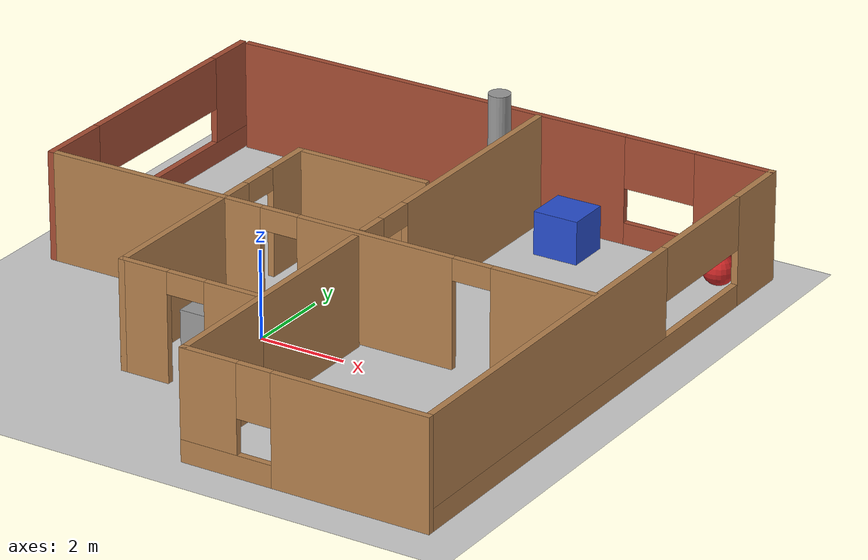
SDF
<sdf version="1.6">
 <world name="default">
  <light name="sun" type="directional">
   <pose>0 0 15 0 -0 0</pose>
   <diffuse>0.8 0.8 0.8 1</diffuse>
   <specular>0.2 0.2 0.2 1</specular>
   <attenuation>
    <range>1000</range>
    <constant>0.9</constant>
    <linear>0.01</linear>
    <quadratic>0.001</quadratic>
   </attenuation>
   <direction>-0.5 0.1 -0.9</direction>
  </light>
  <model name="ground_plane">
   <static>1</static>
   <link name="link">
    <collision name="collision">
     <geometry><plane><normal>0 0 1</normal><size>100 100</size></plane></geometry>
     <surface><friction><ode><mu>100</mu><mu2>50</mu2></ode></friction></surface>
    </collision>
    <visual name="visual">
     <transparency>1</transparency>
     <cast_shadows>0</cast_shadows>
     <geometry><plane><normal>0 0 1</normal><size>100 100</size></plane></geometry>
     <material>
      <script><uri>file://media/materials/scripts/gazebo.material</uri><name>Gazebo/Grey</name></script>
     </material>
    </visual>
   </link>
  </model>
  <gravity>0 0 -9.8</gravity>
  <magnetic_field>6e-06 2.3e-05 -4.2e-05</magnetic_field>
  <atmosphere type="adiabatic"/>
  <physics name="default_physics" default="0" type="ode">
   <max_step_size>0.001</max_step_size>
   <real_time_factor>1</real_time_factor>
   <real_time_update_rate>1000</real_time_update_rate>
  </physics>
  <scene><ambient>0.4 0.4 0.4 1</ambient><background>0.7 0.7 0.7 1</background><shadows>1</shadows></scene>
  <spherical_coordinates>
   <surface_model>EARTH_WGS84</surface_model>
   <latitude_deg>0</latitude_deg>
   <longitude_deg>0</longitude_deg>
   <elevation>0</elevation>
   <heading_deg>0</heading_deg>
  </spherical_coordinates>
  <model name="SlamModel">
   <pose>0.768992 1.34781 0 0 -0 0</pose>
   <link name="Wall_0">
    <pose>0.1 6.736 0 0 -0 0</pose>
    <visual name="Wall_0_Visual_0">
     <pose>-1.78391 0 1.25 0 -0 0</pose>
     <geometry><box><size>9.68217 0.15 2.5</size></box></geometry>
     <material>
      <script><uri>file://media/materials/scripts/gazebo.material</uri><name>Gazebo/Bricks</name></script>
      <ambient>1 1 1 1</ambient>
     </material>
     <meta><layer>0</layer></meta>
    </visual>
    <collision name="Wall_0_Collision_0">
     <geometry><box><size>9.68217 0.15 2.5</size></box></geometry>
     <pose>-1.78391 0 1.25 0 -0 0</pose>
    </collision>
    <visual name="Wall_0_Visual_1">
     <pose>4.84109 0 0.25 0 -0 0</pose>
     <geometry><box><size>3.56783 0.15 0.5</size></box></geometry>
     <material>
      <script><uri>file://media/materials/scripts/gazebo.material</uri><name>Gazebo/Bricks</name></script>
      <ambient>1 1 1 1</ambient>
     </material>
     <meta><layer>0</layer></meta>
    </visual>
    <collision name="Wall_0_Collision_1">
     <geometry><box><size>3.56783 0.15 0.5</size></box></geometry>
     <pose>4.84109 0 0.25 0 -0 0</pose>
    </collision>
    <visual name="Wall_0_Visual_2">
     <pose>5.6861 0 1.5 0 -0 0</pose>
     <geometry><box><size>1.8778 0.15 2</size></box></geometry>
     <material>
      <script><uri>file://media/materials/scripts/gazebo.material</uri><name>Gazebo/Bricks</name></script>
      <ambient>1 1 1 1</ambient>
     </material>
     <meta><layer>0</layer></meta>
    </visual>
    <collision name="Wall_0_Collision_2">
     <geometry><box><size>1.8778 0.15 2</size></box></geometry>
     <pose>5.6861 0 1.5 0 -0 0</pose>
    </collision>
    <visual name="Wall_0_Visual_3">
     <pose>3.90218 0 1.9 0 -0 0</pose>
     <geometry><box><size>1.69002 0.15 1.2</size></box></geometry>
     <material>
      <script><uri>file://media/materials/scripts/gazebo.material</uri><name>Gazebo/Bricks</name></script>
      <ambient>1 1 1 1</ambient>
     </material>
     <meta><layer>0</layer></meta>
    </visual>
    <collision name="Wall_0_Collision_3">
     <geometry><box><size>1.69002 0.15 1.2</size></box></geometry>
     <pose>3.90218 0 1.9 0 -0 0</pose>
    </collision>
   </link>
   <link name="Wall_1">
    <pose>6.65 0 0 0 0 -1.5708</pose>
    <visual name="Wall_1_Visual_0">
     <pose>-6.0201 0 1.25 0 -0 0</pose>
     <geometry><box><size>1.58123 0.15 2.5</size></box></geometry>
     <material>
      <script><uri>file://media/materials/scripts/gazebo.material</uri><name>Gazebo/Wood</name></script>
      <ambient>1 1 1 1</ambient>
     </material>
     <meta><layer>0</layer></meta>
    </visual>
    <collision name="Wall_1_Collision_0">
     <geometry><box><size>1.58123 0.15 2.5</size></box></geometry>
     <pose>-6.0201 0 1.25 0 -0 0</pose>
    </collision>
    <visual name="Wall_1_Visual_1">
     <pose>0.790618 0 0.25 0 -0 0</pose>
     <geometry><box><size>12.0402 0.15 0.5</size></box></geometry>
     <material>
      <script><uri>file://media/materials/scripts/gazebo.material</uri><name>Gazebo/Wood</name></script>
      <ambient>1 1 1 1</ambient>
     </material>
     <meta><layer>0</layer></meta>
    </visual>
    <collision name="Wall_1_Collision_1">
     <geometry><box><size>12.0402 0.15 0.5</size></box></geometry>
     <pose>0.790618 0 0.25 0 -0 0</pose>
    </collision>
    <visual name="Wall_1_Visual_2">
     <pose>2.28312 0 1.5 0 -0 0</pose>
     <geometry><box><size>9.05519 0.15 2</size></box></geometry>
     <material>
      <script><uri>file://media/materials/scripts/gazebo.material</uri><name>Gazebo/Wood</name></script>
      <ambient>1 1 1 1</ambient>
     </material>
     <meta><layer>0</layer></meta>
    </visual>
    <collision name="Wall_1_Collision_2">
     <geometry><box><size>9.05519 0.15 2</size></box></geometry>
     <pose>2.28312 0 1.5 0 -0 0</pose>
    </collision>
    <visual name="Wall_1_Visual_3">
     <pose>-3.73698 0 1.9 0 -0 0</pose>
     <geometry><box><size>2.985 0.15 1.2</size></box></geometry>
     <material>
      <script><uri>file://media/materials/scripts/gazebo.material</uri><name>Gazebo/Wood</name></script>
      <ambient>1 1 1 1</ambient>
     </material>
     <meta><layer>0</layer></meta>
    </visual>
    <collision name="Wall_1_Collision_3">
     <geometry><box><size>2.985 0.15 1.2</size></box></geometry>
     <pose>-3.73698 0 1.9 0 -0 0</pose>
    </collision>
   </link>
   <link name="Wall_11">
    <collision name="Wall_11_Collision">
     <geometry><box><size>3.5 0.15 2.5</size></box></geometry>
     <pose>0 0 1.25 0 -0 0</pose>
    </collision>
    <visual name="Wall_11_Visual">
     <pose>0 0 1.25 0 -0 0</pose>
     <geometry><box><size>3.5 0.15 2.5</size></box></geometry>
     <material>
      <script><uri>file://media/materials/scripts/gazebo.material</uri><name>Gazebo/Wood</name></script>
      <ambient>1 1 1 1</ambient>
     </material>
     <meta><layer>0</layer></meta>
    </visual>
    <pose>1.05 -2.339 0 0 -0 1.5708</pose>
   </link>
   <link name="Wall_13">
    <pose>-2.3 1.011 0 0 -0 1.5708</pose>
    <visual name="Wall_13_Visual_0">
     <pose>-1.05483 0 1.25 0 -0 0</pose>
     <geometry><box><size>0.890336 0.15 2.5</size></box></geometry>
     <material>
      <script><uri>file://media/materials/scripts/gazebo.material</uri><name>Gazebo/Wood</name></script>
      <ambient>1 1 1 1</ambient>
     </material>
     <meta><layer>0</layer></meta>
    </visual>
    <collision name="Wall_13_Collision_0">
     <geometry><box><size>0.890336 0.15 2.5</size></box></geometry>
     <pose>-1.05483 0 1.25 0 -0 0</pose>
    </collision>
    <visual name="Wall_13_Visual_1">
     <pose>0.895168 0 1.25 0 -0 0</pose>
     <geometry><box><size>1.20966 0.15 2.5</size></box></geometry>
     <material>
      <script><uri>file://media/materials/scripts/gazebo.material</uri><name>Gazebo/Wood</name></script>
      <ambient>1 1 1 1</ambient>
     </material>
     <meta><layer>0</layer></meta>
    </visual>
    <collision name="Wall_13_Collision_1">
     <geometry><box><size>1.20966 0.15 2.5</size></box></geometry>
     <pose>0.895168 0 1.25 0 -0 0</pose>
    </collision>
    <visual name="Wall_13_Visual_2">
     <pose>-0.159664 0 2.25 0 -0 0</pose>
     <geometry><box><size>0.9 0.15 0.5</size></box></geometry>
     <material>
      <script><uri>file://media/materials/scripts/gazebo.material</uri><name>Gazebo/Wood</name></script>
      <ambient>1 1 1 1</ambient>
     </material>
     <meta><layer>0</layer></meta>
    </visual>
    <collision name="Wall_13_Collision_2">
     <geometry><box><size>0.9 0.15 0.5</size></box></geometry>
     <pose>-0.159664 0 2.25 0 -0 0</pose>
    </collision>
   </link>
   <link name="Wall_14">
    <collision name="Wall_14_Collision">
     <geometry><box><size>3.25 0.15 2.5</size></box></geometry>
     <pose>0 0 1.25 0 -0 0</pose>
    </collision>
    <visual name="Wall_14_Visual">
     <pose>0 0 1.25 0 -0 0</pose>
     <geometry><box><size>3.25 0.15 2.5</size></box></geometry>
     <material>
      <script><uri>file://media/materials/scripts/gazebo.material</uri><name>Gazebo/Wood</name></script>
      <ambient>1 1 1 1</ambient>
     </material>
     <meta><layer>0</layer></meta>
    </visual>
    <pose>-0.75 2.436 0 0 -0 0</pose>
   </link>
   <link name="Wall_16">
    <pose>1.025 3.191 0 0 0 -1.5708</pose>
    <visual name="Wall_16_Visual_0">
     <pose>-0.805187 0 1.25 0 -0 0</pose>
     <geometry><box><size>5.38963 0.15 2.5</size></box></geometry>
     <material>
      <script><uri>file://media/materials/scripts/gazebo.material</uri><name>Gazebo/Wood</name></script>
      <ambient>1 1 1 1</ambient>
     </material>
     <meta><layer>0</layer></meta>
    </visual>
    <collision name="Wall_16_Collision_0">
     <geometry><box><size>5.38963 0.15 2.5</size></box></geometry>
     <pose>-0.805187 0 1.25 0 -0 0</pose>
    </collision>
    <visual name="Wall_16_Visual_1">
     <pose>3.14481 0 1.25 0 -0 0</pose>
     <geometry><box><size>0.710373 0.15 2.5</size></box></geometry>
     <material>
      <script><uri>file://media/materials/scripts/gazebo.material</uri><name>Gazebo/Wood</name></script>
      <ambient>1 1 1 1</ambient>
     </material>
     <meta><layer>0</layer></meta>
    </visual>
    <collision name="Wall_16_Collision_1">
     <geometry><box><size>0.710373 0.15 2.5</size></box></geometry>
     <pose>3.14481 0 1.25 0 -0 0</pose>
    </collision>
    <visual name="Wall_16_Visual_2">
     <pose>2.33963 0 2.25 0 -0 0</pose>
     <geometry><box><size>0.9 0.15 0.5</size></box></geometry>
     <material>
      <script><uri>file://media/materials/scripts/gazebo.material</uri><name>Gazebo/Wood</name></script>
      <ambient>1 1 1 1</ambient>
     </material>
     <meta><layer>0</layer></meta>
    </visual>
    <collision name="Wall_16_Collision_2">
     <geometry><box><size>0.9 0.15 0.5</size></box></geometry>
     <pose>2.33963 0 2.25 0 -0 0</pose>
    </collision>
   </link>
   <link name="Wall_2">
    <pose>3.85 -6.736 0 0 -0 3.14159</pose>
    <visual name="Wall_2_Visual_0">
     <pose>-1.0663 0 1.25 0 -0 0</pose>
     <geometry><box><size>3.6174 0.15 2.5</size></box></geometry>
     <material>
      <script><uri>file://media/materials/scripts/gazebo.material</uri><name>Gazebo/Wood</name></script>
      <ambient>1 1 1 1</ambient>
     </material>
     <meta><layer>0</layer></meta>
    </visual>
    <collision name="Wall_2_Collision_0">
     <geometry><box><size>3.6174 0.15 2.5</size></box></geometry>
     <pose>-1.0663 0 1.25 0 -0 0</pose>
    </collision>
    <visual name="Wall_2_Visual_1">
     <pose>1.8087 0 0.25 0 -0 0</pose>
     <geometry><box><size>2.1326 0.15 0.5</size></box></geometry>
     <material>
      <script><uri>file://media/materials/scripts/gazebo.material</uri><name>Gazebo/Wood</name></script>
      <ambient>1 1 1 1</ambient>
     </material>
     <meta><layer>0</layer></meta>
    </visual>
    <collision name="Wall_2_Collision_1">
     <geometry><box><size>2.1326 0.15 0.5</size></box></geometry>
     <pose>1.8087 0 0.25 0 -0 0</pose>
    </collision>
    <visual name="Wall_2_Visual_2">
     <pose>2.2087 0 1.5 0 -0 0</pose>
     <geometry><box><size>1.33261 0.15 2</size></box></geometry>
     <material>
      <script><uri>file://media/materials/scripts/gazebo.material</uri><name>Gazebo/Wood</name></script>
      <ambient>1 1 1 1</ambient>
     </material>
     <meta><layer>0</layer></meta>
    </visual>
    <collision name="Wall_2_Collision_2">
     <geometry><box><size>1.33261 0.15 2</size></box></geometry>
     <pose>2.2087 0 1.5 0 -0 0</pose>
    </collision>
    <visual name="Wall_2_Visual_3">
     <pose>1.1424 0 1.9 0 -0 0</pose>
     <geometry><box><size>0.8 0.15 1.2</size></box></geometry>
     <material>
      <script><uri>file://media/materials/scripts/gazebo.material</uri><name>Gazebo/Wood</name></script>
      <ambient>1 1 1 1</ambient>
     </material>
     <meta><layer>0</layer></meta>
    </visual>
    <collision name="Wall_2_Collision_3">
     <geometry><box><size>0.8 0.15 1.2</size></box></geometry>
     <pose>1.1424 0 1.9 0 -0 0</pose>
    </collision>
   </link>
   <link name="Wall_3">
    <collision name="Wall_3_Collision">
     <geometry><box><size>2.87167 0.15 2.5</size></box></geometry>
     <pose>0 0 1.25 0 -0 0</pose>
    </collision>
    <visual name="Wall_3_Visual">
     <pose>0 0 1.25 0 -0 0</pose>
     <geometry><box><size>2.87167 0.15 2.5</size></box></geometry>
     <material>
      <script><uri>file://media/materials/scripts/gazebo.material</uri><name>Gazebo/Wood</name></script>
      <ambient>1 1 1 1</ambient>
     </material>
     <meta><layer>0</layer></meta>
    </visual>
    <pose>1.05 -5.375 0 0 -0 1.5708</pose>
   </link>
   <link name="Wall_4">
    <pose>-0.625 -4.014 0 0 -0 3.14159</pose>
    <visual name="Wall_4_Visual_0">
     <pose>-1.0379 0 1.25 0 -0 0</pose>
     <geometry><box><size>1.4242 0.15 2.5</size></box></geometry>
     <material>
      <script><uri>file://media/materials/scripts/gazebo.material</uri><name>Gazebo/Wood</name></script>
      <ambient>1 1 1 1</ambient>
     </material>
     <meta><layer>0</layer></meta>
    </visual>
    <collision name="Wall_4_Collision_0">
     <geometry><box><size>1.4242 0.15 2.5</size></box></geometry>
     <pose>-1.0379 0 1.25 0 -0 0</pose>
    </collision>
    <visual name="Wall_4_Visual_1">
     <pose>1.1621 0 1.25 0 -0 0</pose>
     <geometry><box><size>1.1758 0.15 2.5</size></box></geometry>
     <material>
      <script><uri>file://media/materials/scripts/gazebo.material</uri><name>Gazebo/Wood</name></script>
      <ambient>1 1 1 1</ambient>
     </material>
     <meta><layer>0</layer></meta>
    </visual>
    <collision name="Wall_4_Collision_1">
     <geometry><box><size>1.1758 0.15 2.5</size></box></geometry>
     <pose>1.1621 0 1.25 0 -0 0</pose>
    </collision>
    <visual name="Wall_4_Visual_2">
     <pose>0.124204 0 2.25 0 -0 0</pose>
     <geometry><box><size>0.9 0.15 0.5</size></box></geometry>
     <material>
      <script><uri>file://media/materials/scripts/gazebo.material</uri><name>Gazebo/Wood</name></script>
      <ambient>1 1 1 1</ambient>
     </material>
     <meta><layer>0</layer></meta>
    </visual>
    <collision name="Wall_4_Collision_2">
     <geometry><box><size>0.9 0.15 0.5</size></box></geometry>
     <pose>0.124204 0 2.25 0 -0 0</pose>
    </collision>
   </link>
   <link name="Wall_5">
    <collision name="Wall_5_Collision">
     <geometry><box><size>3.75 0.15 2.5</size></box></geometry>
     <pose>0 0 1.25 0 -0 0</pose>
    </collision>
    <visual name="Wall_5_Visual">
     <pose>0 0 1.25 0 -0 0</pose>
     <geometry><box><size>3.75 0.15 2.5</size></box></geometry>
     <material>
      <script><uri>file://media/materials/scripts/gazebo.material</uri><name>Gazebo/Wood</name></script>
      <ambient>1 1 1 1</ambient>
     </material>
     <meta><layer>0</layer></meta>
    </visual>
    <pose>-2.3 -2.214 0 0 -0 1.5708</pose>
   </link>
   <link name="Wall_6">
    <collision name="Wall_6_Collision">
     <geometry><box><size>4.5 0.15 2.5</size></box></geometry>
     <pose>0 0 1.25 0 -0 0</pose>
    </collision>
    <visual name="Wall_6_Visual">
     <pose>0 0 1.25 0 -0 0</pose>
     <geometry><box><size>4.5 0.15 2.5</size></box></geometry>
     <material>
      <script><uri>file://media/materials/scripts/gazebo.material</uri><name>Gazebo/Wood</name></script>
      <ambient>0.996078 0.47451 0.0196078 1</ambient>
     </material>
     <meta><layer>0</layer></meta>
    </visual>
    <pose>-4.475 -0.414 0 0 -0 3.14159</pose>
   </link>
   <link name="Wall_7">
    <pose>-6.65 3.136 0 0 -0 1.5708</pose>
    <visual name="Wall_7_Visual_0">
     <pose>-2.79073 0 1.25 0 -0 0</pose>
     <geometry><box><size>1.66854 0.15 2.5</size></box></geometry>
     <material>
      <script><uri>file://media/materials/scripts/gazebo.material</uri><name>Gazebo/Bricks</name></script>
      <ambient>1 1 1 1</ambient>
     </material>
     <meta><layer>0</layer></meta>
    </visual>
    <collision name="Wall_7_Collision_0">
     <geometry><box><size>1.66854 0.15 2.5</size></box></geometry>
     <pose>-2.79073 0 1.25 0 -0 0</pose>
    </collision>
    <visual name="Wall_7_Visual_1">
     <pose>0.834268 0 0.25 0 -0 0</pose>
     <geometry><box><size>5.58146 0.15 0.5</size></box></geometry>
     <material>
      <script><uri>file://media/materials/scripts/gazebo.material</uri><name>Gazebo/Bricks</name></script>
      <ambient>1 1 1 1</ambient>
     </material>
     <meta><layer>0</layer></meta>
    </visual>
    <collision name="Wall_7_Collision_1">
     <geometry><box><size>5.58146 0.15 0.5</size></box></geometry>
     <pose>0.834268 0 0.25 0 -0 0</pose>
    </collision>
    <visual name="Wall_7_Visual_2">
     <pose>3.03454 0 1.5 0 -0 0</pose>
     <geometry><box><size>1.18092 0.15 2</size></box></geometry>
     <material>
      <script><uri>file://media/materials/scripts/gazebo.material</uri><name>Gazebo/Bricks</name></script>
      <ambient>1 1 1 1</ambient>
     </material>
     <meta><layer>0</layer></meta>
    </visual>
    <collision name="Wall_7_Collision_2">
     <geometry><box><size>1.18092 0.15 2</size></box></geometry>
     <pose>3.03454 0 1.5 0 -0 0</pose>
    </collision>
    <visual name="Wall_7_Visual_3">
     <pose>0.243809 0 1.9 0 -0 0</pose>
     <geometry><box><size>4.40055 0.15 1.2</size></box></geometry>
     <material>
      <script><uri>file://media/materials/scripts/gazebo.material</uri><name>Gazebo/Bricks</name></script>
      <ambient>1 1 1 1</ambient>
     </material>
     <meta><layer>0</layer></meta>
    </visual>
    <collision name="Wall_7_Collision_3">
     <geometry><box><size>4.40055 0.15 1.2</size></box></geometry>
     <pose>0.243809 0 1.9 0 -0 0</pose>
    </collision>
   </link>
   <link name="Wall_9">
    <pose>2.125 -0.414 0 0 -0 0</pose>
    <visual name="Wall_9_Visual_0">
     <pose>-3.98858 0 1.25 0 -0 0</pose>
     <geometry><box><size>1.02285 0.15 2.5</size></box></geometry>
     <material>
      <script><uri>file://media/materials/scripts/gazebo.material</uri><name>Gazebo/Wood</name></script>
      <ambient>1 1 1 1</ambient>
     </material>
     <meta><layer>0</layer></meta>
    </visual>
    <collision name="Wall_9_Collision_0">
     <geometry><box><size>1.02285 0.15 2.5</size></box></geometry>
     <pose>-3.98858 0 1.25 0 -0 0</pose>
    </collision>
    <visual name="Wall_9_Visual_1">
     <pose>-0.702298 0 1.25 0 -0 0</pose>
     <geometry><box><size>3.74972 0.15 2.5</size></box></geometry>
     <material>
      <script><uri>file://media/materials/scripts/gazebo.material</uri><name>Gazebo/Wood</name></script>
      <ambient>1 1 1 1</ambient>
     </material>
     <meta><layer>0</layer></meta>
    </visual>
    <collision name="Wall_9_Collision_1">
     <geometry><box><size>3.74972 0.15 2.5</size></box></geometry>
     <pose>-0.702298 0 1.25 0 -0 0</pose>
    </collision>
    <visual name="Wall_9_Visual_2">
     <pose>3.28628 0 1.25 0 -0 0</pose>
     <geometry><box><size>2.42744 0.15 2.5</size></box></geometry>
     <material>
      <script><uri>file://media/materials/scripts/gazebo.material</uri><name>Gazebo/Wood</name></script>
      <ambient>1 1 1 1</ambient>
     </material>
     <meta><layer>0</layer></meta>
    </visual>
    <collision name="Wall_9_Collision_2">
     <geometry><box><size>2.42744 0.15 2.5</size></box></geometry>
     <pose>3.28628 0 1.25 0 -0 0</pose>
    </collision>
    <visual name="Wall_9_Visual_3">
     <pose>-3.02716 0 2.25 0 -0 0</pose>
     <geometry><box><size>0.9 0.15 0.5</size></box></geometry>
     <material>
      <script><uri>file://media/materials/scripts/gazebo.material</uri><name>Gazebo/Wood</name></script>
      <ambient>1 1 1 1</ambient>
     </material>
     <meta><layer>0</layer></meta>
    </visual>
    <collision name="Wall_9_Collision_3">
     <geometry><box><size>0.9 0.15 0.5</size></box></geometry>
     <pose>-3.02716 0 2.25 0 -0 0</pose>
    </collision>
    <visual name="Wall_9_Visual_4">
     <pose>1.62256 0 2.25 0 -0 0</pose>
     <geometry><box><size>0.9 0.15 0.5</size></box></geometry>
     <material>
      <script><uri>file://media/materials/scripts/gazebo.material</uri><name>Gazebo/Wood</name></script>
      <ambient>1 1 1 1</ambient>
     </material>
     <meta><layer>0</layer></meta>
    </visual>
    <collision name="Wall_9_Collision_4">
     <geometry><box><size>0.9 0.15 0.5</size></box></geometry>
     <pose>1.62256 0 2.25 0 -0 0</pose>
    </collision>
   </link>
   <static>1</static>
  </model>
  <model name="bookshelf">
   <static>1</static>
   <link name="link">
    <inertial><mass>1</mass></inertial>
    <collision name="back">
     <pose>0 0.005 0.6 0 -0 0</pose>
     <geometry><box><size>0.9 0.01 1.2</size></box></geometry>
    </collision>
    <visual name="visual1">
     <pose>0 0.005 0.6 0 -0 0</pose>
     <geometry><box><size>0.9 0.01 1.2</size></box></geometry>
     <material>
      <script><uri>file://media/materials/scripts/gazebo.material</uri><name>Gazebo/Wood</name></script>
     </material>
    </visual>
    <collision name="left_side">
     <pose>0.45 -0.195 0.6 0 -0 0</pose>
     <geometry><box><size>0.02 0.4 1.2</size></box></geometry>
    </collision>
    <visual name="visual2">
     <pose>0.45 -0.195 0.6 0 -0 0</pose>
     <geometry><box><size>0.02 0.4 1.2</size></box></geometry>
     <material>
      <script><uri>file://media/materials/scripts/gazebo.material</uri><name>Gazebo/Wood</name></script>
     </material>
    </visual>
    <collision name="right_side">
     <pose>-0.45 -0.195 0.6 0 -0 0</pose>
     <geometry><box><size>0.02 0.4 1.2</size></box></geometry>
    </collision>
    <visual name="visual3">
     <pose>-0.45 -0.195 0.6 0 -0 0</pose>
     <geometry><box><size>0.02 0.4 1.2</size></box></geometry>
     <material>
      <script><uri>file://media/materials/scripts/gazebo.material</uri><name>Gazebo/Wood</name></script>
     </material>
    </visual>
    <collision name="bottom">
     <pose>0 -0.195 0.03 0 -0 0</pose>
     <geometry><box><size>0.88 0.4 0.06</size></box></geometry>
    </collision>
    <visual name="visual4">
     <pose>0 -0.195 0.03 0 -0 0</pose>
     <geometry><box><size>0.88 0.4 0.06</size></box></geometry>
     <material>
      <script><uri>file://media/materials/scripts/gazebo.material</uri><name>Gazebo/Wood</name></script>
     </material>
    </visual>
    <collision name="top">
     <pose>0 -0.195 1.19 0 -0 0</pose>
     <geometry><box><size>0.88 0.4 0.02</size></box></geometry>
    </collision>
    <visual name="visual5">
     <pose>0 -0.195 1.19 0 -0 0</pose>
     <geometry><box><size>0.88 0.4 0.02</size></box></geometry>
     <material>
      <script><uri>file://media/materials/scripts/gazebo.material</uri><name>Gazebo/Wood</name></script>
     </material>
    </visual>
    <collision name="low_shelf">
     <pose>0 -0.195 0.43 0 -0 0</pose>
     <geometry><box><size>0.88 0.4 0.02</size></box></geometry>
    </collision>
    <visual name="visual6">
     <pose>0 -0.195 0.43 0 -0 0</pose>
     <geometry><box><size>0.88 0.4 0.02</size></box></geometry>
     <material>
      <script><uri>file://media/materials/scripts/gazebo.material</uri><name>Gazebo/Wood</name></script>
     </material>
    </visual>
    <collision name="high_shelf">
     <pose>0 -0.195 0.8 0 -0 0</pose>
     <geometry><box><size>0.88 0.4 0.02</size></box></geometry>
    </collision>
    <visual name="visual7">
     <pose>0 -0.195 0.8 0 -0 0</pose>
     <geometry><box><size>0.88 0.4 0.02</size></box></geometry>
     <material>
      <script><uri>file://media/materials/scripts/gazebo.material</uri><name>Gazebo/Wood</name></script>
     </material>
    </visual>
   </link>
   <pose>6.62422 2.13632 0 0 -0 0</pose>
  </model>
  <model name="table">
   <static>1</static>
   <link name="link">
    <collision name="surface">
     <pose>0 0 1 0 -0 0</pose>
     <geometry><box><size>1.5 0.8 0.03</size></box></geometry>
     <surface><friction><ode><mu>0.6</mu><mu2>0.6</mu2></ode></friction></surface>
    </collision>
    <visual name="visual1">
     <pose>0 0 1 0 -0 0</pose>
     <geometry><box><size>1.5 0.8 0.03</size></box></geometry>
     <material>
      <script><uri>file://media/materials/scripts/gazebo.material</uri><name>Gazebo/Wood</name></script>
     </material>
    </visual>
    <collision name="front_left_leg">
     <pose>0.68 0.38 0.5 0 -0 0</pose>
     <geometry><cylinder><radius>0.02</radius><length>1</length></cylinder></geometry>
    </collision>
    <visual name="front_left_leg">
     <pose>0.68 0.38 0.5 0 -0 0</pose>
     <geometry><cylinder><radius>0.02</radius><length>1</length></cylinder></geometry>
     <material>
      <script><uri>file://media/materials/scripts/gazebo.material</uri><name>Gazebo/Grey</name></script>
     </material>
    </visual>
    <collision name="front_right_leg">
     <pose>0.68 -0.38 0.5 0 -0 0</pose>
     <geometry><cylinder><radius>0.02</radius><length>1</length></cylinder></geometry>
    </collision>
    <visual name="front_right_leg">
     <pose>0.68 -0.38 0.5 0 -0 0</pose>
     <geometry><cylinder><radius>0.02</radius><length>1</length></cylinder></geometry>
     <material>
      <script><uri>file://media/materials/scripts/gazebo.material</uri><name>Gazebo/Grey</name></script>
     </material>
    </visual>
    <collision name="back_right_leg">
     <pose>-0.68 -0.38 0.5 0 -0 0</pose>
     <geometry><cylinder><radius>0.02</radius><length>1</length></cylinder></geometry>
    </collision>
    <visual name="back_right_leg">
     <pose>-0.68 -0.38 0.5 0 -0 0</pose>
     <geometry><cylinder><radius>0.02</radius><length>1</length></cylinder></geometry>
     <material>
      <script><uri>file://media/materials/scripts/gazebo.material</uri><name>Gazebo/Grey</name></script>
     </material>
    </visual>
    <collision name="back_left_leg">
     <pose>-0.68 0.38 0.5 0 -0 0</pose>
     <geometry><cylinder><radius>0.02</radius><length>1</length></cylinder></geometry>
    </collision>
    <visual name="back_left_leg">
     <pose>-0.68 0.38 0.5 0 -0 0</pose>
     <geometry><cylinder><radius>0.02</radius><length>1</length></cylinder></geometry>
     <material>
      <script><uri>file://media/materials/scripts/gazebo.material</uri><name>Gazebo/Grey</name></script>
     </material>
    </visual>
   </link>
   <pose>5.30719 -3.94446 0 0 -0 0</pose>
  </model>
  <model name="unit_sphere">
   <pose>6.63837 7.34257 0.370402 0 -0 0</pose>
   <link name="link">
    <inertial>
     <mass>1</mass>
     <inertia><ixx>0.1</ixx><ixy>0</ixy><ixz>0</ixz><iyy>0.1</iyy><iyz>0</iyz><izz>0.1</izz></inertia>
    </inertial>
    <collision name="collision"><geometry><sphere><radius>0.370403</radius></sphere></geometry></collision>
    <visual name="visual">
     <geometry><sphere><radius>0.370403</radius></sphere></geometry>
     <material>
      <script><name>Gazebo/Red</name><uri>file://media/materials/scripts/gazebo.material</uri></script>
     </material>
    </visual>
   </link>
  </model>
  <model name="unit_box">
   <pose>3.09875 7.04961 0.5 0 -0 0</pose>
   <link name="link">
    <inertial>
     <mass>1</mass>
     <inertia>
      <ixx>0.166667</ixx>
      <ixy>0</ixy>
      <ixz>0</ixz>
      <iyy>0.166667</iyy>
      <iyz>0</iyz>
      <izz>0.166667</izz>
     </inertia>
    </inertial>
    <collision name="collision"><geometry><box><size>1.05857 1 1</size></box></geometry></collision>
    <visual name="visual">
     <geometry><box><size>1.05857 1 1</size></box></geometry>
     <material>
      <script><name>Gazebo/Blue</name><uri>file://media/materials/scripts/gazebo.material</uri></script>
     </material>
    </visual>
   </link>
  </model>
  <model name="unit_cylinder">
   <pose>1.21248 7.35177 1.56104 0 -0 0.002428</pose>
   <link name="link">
    <inertial>
     <mass>1</mass>
     <inertia><ixx>0.145833</ixx><ixy>0</ixy><ixz>0</ixz><iyy>0.145833</iyy><iyz>0</iyz><izz>0.125</izz></inertia>
    </inertial>
    <collision name="collision">
     <geometry><cylinder><radius>0.248114</radius><length>3.1221</length></cylinder></geometry>
    </collision>
    <visual name="visual">
     <geometry><cylinder><radius>0.248114</radius><length>3.1221</length></cylinder></geometry>
     <material>
      <script><name>Gazebo/Grey</name><uri>file://media/materials/scripts/gazebo.material</uri></script>
     </material>
    </visual>
   </link>
  </model>
  <model name="unit_box_0">
   <pose>-0.509206 -0.962975 0.499995 0 -1e-05 0</pose>
   <link name="link">
    <inertial>
     <mass>1</mass>
     <inertia>
      <ixx>0.166667</ixx>
      <ixy>0</ixy>
      <ixz>0</ixz>
      <iyy>0.166667</iyy>
      <iyz>0</iyz>
      <izz>0.166667</izz>
     </inertia>
    </inertial>
    <collision name="collision"><geometry><box><size>1 1 1</size></box></geometry></collision>
    <visual name="visual">
     <geometry><box><size>1 1 1</size></box></geometry>
     <material>
      <script><name>Gazebo/Grey</name><uri>file://media/materials/scripts/gazebo.material</uri></script>
     </material>
    </visual>
   </link>
  </model>
  <model name="unit_sphere_0">
   <pose>-4.95424 2.43139 0.5 0 -0 0</pose>
   <link name="link">
    <inertial>
     <mass>1</mass>
     <inertia><ixx>0.1</ixx><ixy>0</ixy><ixz>0</ixz><iyy>0.1</iyy><iyz>0</iyz><izz>0.1</izz></inertia>
    </inertial>
    <collision name="collision"><geometry><sphere><radius>0.5</radius></sphere></geometry></collision>
    <visual name="visual">
     <geometry><sphere><radius>0.5</radius></sphere></geometry>
     <material>
      <script><name>Gazebo/Grey</name><uri>file://media/materials/scripts/gazebo.material</uri></script>
     </material>
    </visual>
   </link>
  </model>
 </world>
</sdf>
